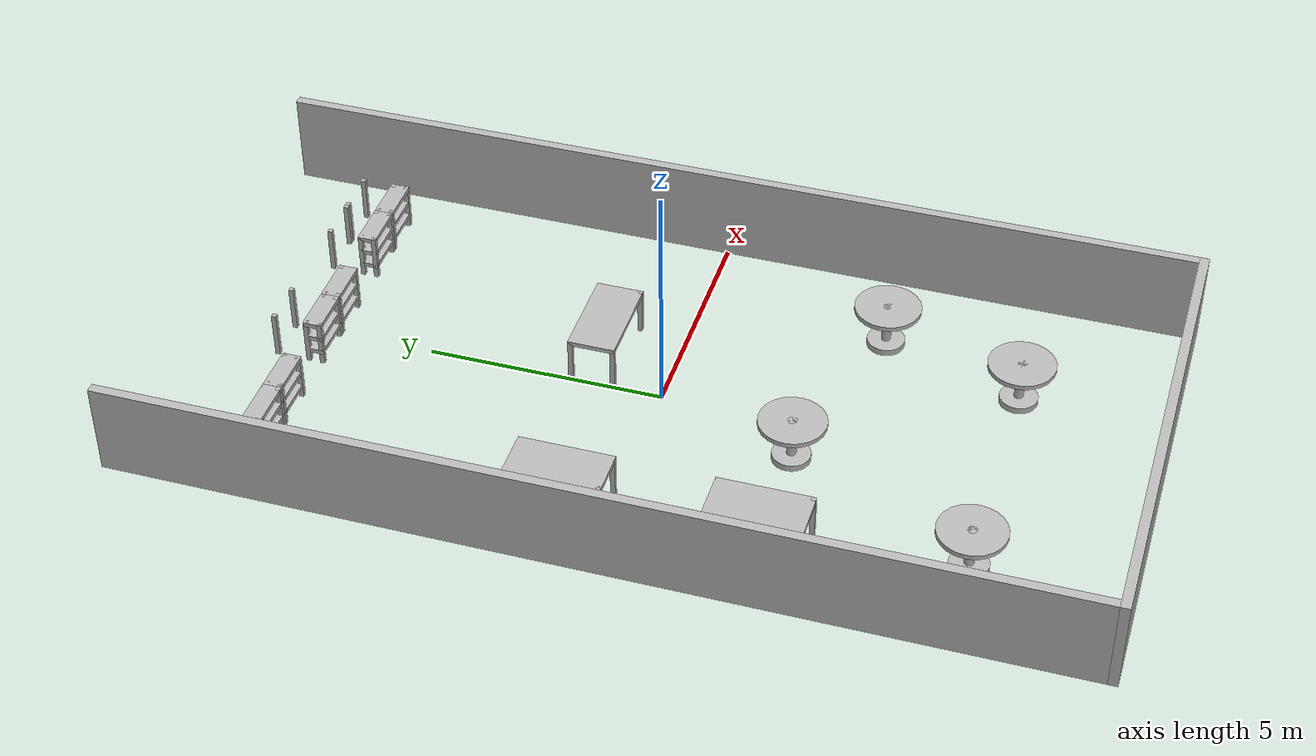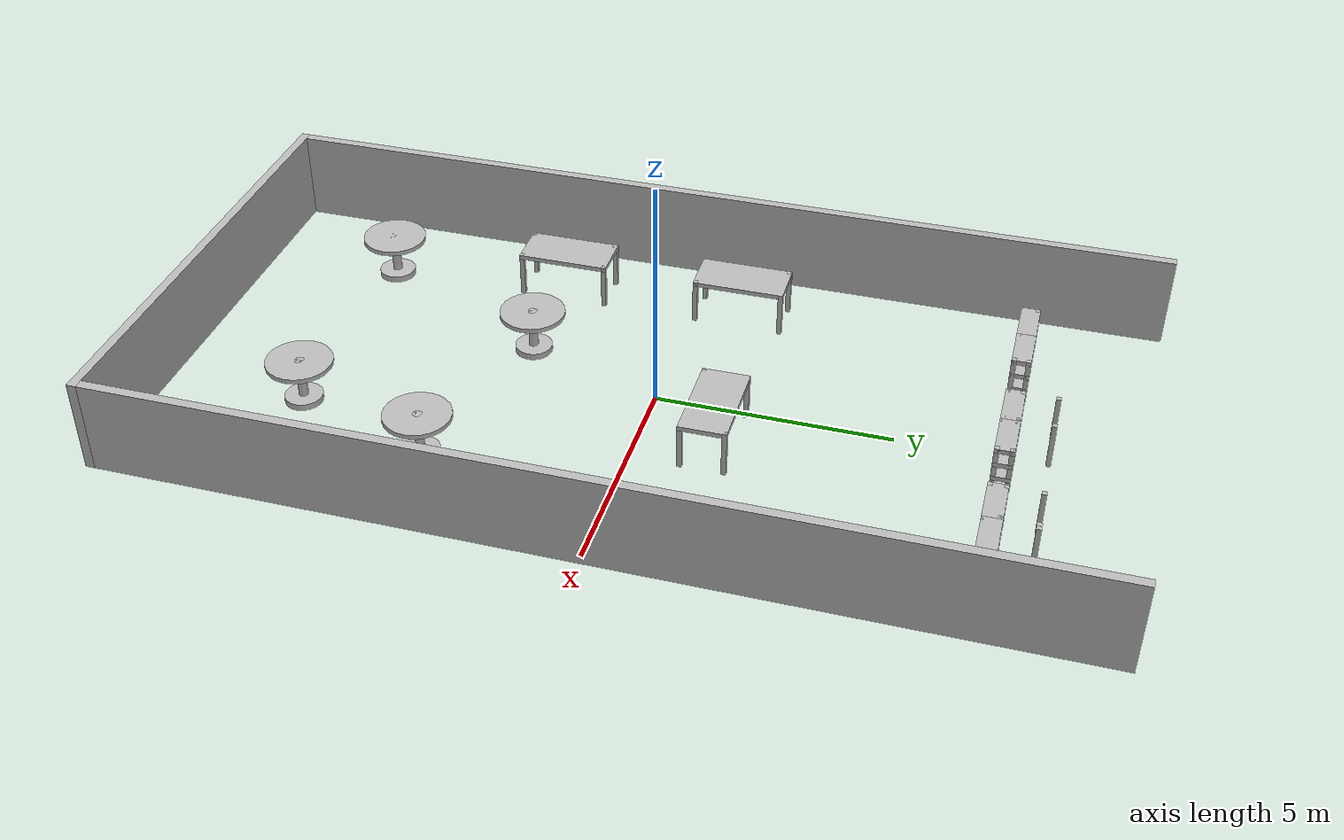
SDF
<sdf version="1.11">
 <model name="store-model">
  <static>true</static>
  <link name="store-shelf-l1-support0">
   <pose>2.05 8.05 0.5 0 0 0</pose>
   <visual name="store-shelf-v1-support0">
    <geometry><box><size>0.1 0.1 1</size></box></geometry>
    <material>
     <diffuse>0.726 0.726 0.726 1</diffuse>
     <ambient>0.726 0.726 0.726 1</ambient>
     <specular>0.726 0.726 0.726 1</specular>
    </material>
   </visual>
   <collision name="store-shelf-c1-support0"><geometry><box><size>0.1 0.1 1</size></box></geometry></collision>
  </link>
  <link name="store-shelf-l1-support1">
   <pose>2.95 8.05 0.5 0 0 0</pose>
   <visual name="store-shelf-v1-support1">
    <geometry><box><size>0.1 0.1 1</size></box></geometry>
    <material>
     <diffuse>0.726 0.726 0.726 1</diffuse>
     <ambient>0.726 0.726 0.726 1</ambient>
     <specular>0.726 0.726 0.726 1</specular>
    </material>
   </visual>
   <collision name="store-shelf-c1-support1"><geometry><box><size>0.1 0.1 1</size></box></geometry></collision>
  </link>
  <link name="store-shelf-l2-shelf0">
   <pose>2.5 7.2 0.95 0 0 0</pose>
   <visual name="store-shelf-v2-shelf0">
    <geometry><box><size>1 0.4 0.1</size></box></geometry>
    <material>
     <diffuse>0.726 0.726 0.726 1</diffuse>
     <ambient>0.726 0.726 0.726 1</ambient>
     <specular>0.726 0.726 0.726 1</specular>
    </material>
   </visual>
   <collision name="store-shelf-c2-shelf0"><geometry><box><size>1 0.4 0.1</size></box></geometry></collision>
  </link>
  <link name="store-shelf-l2-shelf1">
   <pose>2.5 7.2 0.6166666666666666 0 0 0</pose>
   <visual name="store-shelf-v2-shelf1">
    <geometry><box><size>1 0.4 0.1</size></box></geometry>
    <material>
     <diffuse>0.726 0.726 0.726 1</diffuse>
     <ambient>0.726 0.726 0.726 1</ambient>
     <specular>0.726 0.726 0.726 1</specular>
    </material>
   </visual>
   <collision name="store-shelf-c2-shelf1"><geometry><box><size>1 0.4 0.1</size></box></geometry></collision>
  </link>
  <link name="store-shelf-l2-shelf2">
   <pose>2.5 7.2 0.2833333333333333 0 0 0</pose>
   <visual name="store-shelf-v2-shelf2">
    <geometry><box><size>1 0.4 0.1</size></box></geometry>
    <material>
     <diffuse>0.726 0.726 0.726 1</diffuse>
     <ambient>0.726 0.726 0.726 1</ambient>
     <specular>0.726 0.726 0.726 1</specular>
    </material>
   </visual>
   <collision name="store-shelf-c2-shelf2"><geometry><box><size>1 0.4 0.1</size></box></geometry></collision>
  </link>
  <link name="store-shelf-l2-support0">
   <pose>2.05 7.05 0.5 0 0 0</pose>
   <visual name="store-shelf-v2-support0">
    <geometry><box><size>0.1 0.1 1</size></box></geometry>
    <material>
     <diffuse>0.726 0.726 0.726 1</diffuse>
     <ambient>0.726 0.726 0.726 1</ambient>
     <specular>0.726 0.726 0.726 1</specular>
    </material>
   </visual>
   <collision name="store-shelf-c2-support0"><geometry><box><size>0.1 0.1 1</size></box></geometry></collision>
  </link>
  <link name="store-shelf-l2-support1">
   <pose>2.95 7.05 0.5 0 0 0</pose>
   <visual name="store-shelf-v2-support1">
    <geometry><box><size>0.1 0.1 1</size></box></geometry>
    <material>
     <diffuse>0.726 0.726 0.726 1</diffuse>
     <ambient>0.726 0.726 0.726 1</ambient>
     <specular>0.726 0.726 0.726 1</specular>
    </material>
   </visual>
   <collision name="store-shelf-c2-support1"><geometry><box><size>0.1 0.1 1</size></box></geometry></collision>
  </link>
  <link name="store-shelf-l2-support2">
   <pose>2.05 7.3500000000000005 0.5 0 0 0</pose>
   <visual name="store-shelf-v2-support2">
    <geometry><box><size>0.1 0.1 1</size></box></geometry>
    <material>
     <diffuse>0.726 0.726 0.726 1</diffuse>
     <ambient>0.726 0.726 0.726 1</ambient>
     <specular>0.726 0.726 0.726 1</specular>
    </material>
   </visual>
   <collision name="store-shelf-c2-support2"><geometry><box><size>0.1 0.1 1</size></box></geometry></collision>
  </link>
  <link name="store-shelf-l2-support3">
   <pose>2.95 7.3500000000000005 0.5 0 0 0</pose>
   <visual name="store-shelf-v2-support3">
    <geometry><box><size>0.1 0.1 1</size></box></geometry>
    <material>
     <diffuse>0.726 0.726 0.726 1</diffuse>
     <ambient>0.726 0.726 0.726 1</ambient>
     <specular>0.726 0.726 0.726 1</specular>
    </material>
   </visual>
   <collision name="store-shelf-c2-support3"><geometry><box><size>0.1 0.1 1</size></box></geometry></collision>
  </link>
  <link name="store-shelf-l3-shelf0">
   <pose>3.5 7.2 0.95 0 0 0</pose>
   <visual name="store-shelf-v3-shelf0">
    <geometry><box><size>1 0.4 0.1</size></box></geometry>
    <material>
     <diffuse>0.726 0.726 0.726 1</diffuse>
     <ambient>0.726 0.726 0.726 1</ambient>
     <specular>0.726 0.726 0.726 1</specular>
    </material>
   </visual>
   <collision name="store-shelf-c3-shelf0"><geometry><box><size>1 0.4 0.1</size></box></geometry></collision>
  </link>
  <link name="store-shelf-l3-shelf1">
   <pose>3.5 7.2 0.6166666666666666 0 0 0</pose>
   <visual name="store-shelf-v3-shelf1">
    <geometry><box><size>1 0.4 0.1</size></box></geometry>
    <material>
     <diffuse>0.726 0.726 0.726 1</diffuse>
     <ambient>0.726 0.726 0.726 1</ambient>
     <specular>0.726 0.726 0.726 1</specular>
    </material>
   </visual>
   <collision name="store-shelf-c3-shelf1"><geometry><box><size>1 0.4 0.1</size></box></geometry></collision>
  </link>
  <link name="store-shelf-l3-shelf2">
   <pose>3.5 7.2 0.2833333333333333 0 0 0</pose>
   <visual name="store-shelf-v3-shelf2">
    <geometry><box><size>1 0.4 0.1</size></box></geometry>
    <material>
     <diffuse>0.726 0.726 0.726 1</diffuse>
     <ambient>0.726 0.726 0.726 1</ambient>
     <specular>0.726 0.726 0.726 1</specular>
    </material>
   </visual>
   <collision name="store-shelf-c3-shelf2"><geometry><box><size>1 0.4 0.1</size></box></geometry></collision>
  </link>
  <link name="store-shelf-l3-support0">
   <pose>3.05 7.05 0.5 0 0 0</pose>
   <visual name="store-shelf-v3-support0">
    <geometry><box><size>0.1 0.1 1</size></box></geometry>
    <material>
     <diffuse>0.726 0.726 0.726 1</diffuse>
     <ambient>0.726 0.726 0.726 1</ambient>
     <specular>0.726 0.726 0.726 1</specular>
    </material>
   </visual>
   <collision name="store-shelf-c3-support0"><geometry><box><size>0.1 0.1 1</size></box></geometry></collision>
  </link>
  <link name="store-shelf-l3-support1">
   <pose>3.95 7.05 0.5 0 0 0</pose>
   <visual name="store-shelf-v3-support1">
    <geometry><box><size>0.1 0.1 1</size></box></geometry>
    <material>
     <diffuse>0.726 0.726 0.726 1</diffuse>
     <ambient>0.726 0.726 0.726 1</ambient>
     <specular>0.726 0.726 0.726 1</specular>
    </material>
   </visual>
   <collision name="store-shelf-c3-support1"><geometry><box><size>0.1 0.1 1</size></box></geometry></collision>
  </link>
  <link name="store-shelf-l3-support2">
   <pose>3.05 7.3500000000000005 0.5 0 0 0</pose>
   <visual name="store-shelf-v3-support2">
    <geometry><box><size>0.1 0.1 1</size></box></geometry>
    <material>
     <diffuse>0.726 0.726 0.726 1</diffuse>
     <ambient>0.726 0.726 0.726 1</ambient>
     <specular>0.726 0.726 0.726 1</specular>
    </material>
   </visual>
   <collision name="store-shelf-c3-support2"><geometry><box><size>0.1 0.1 1</size></box></geometry></collision>
  </link>
  <link name="store-shelf-l3-support3">
   <pose>3.95 7.3500000000000005 0.5 0 0 0</pose>
   <visual name="store-shelf-v3-support3">
    <geometry><box><size>0.1 0.1 1</size></box></geometry>
    <material>
     <diffuse>0.726 0.726 0.726 1</diffuse>
     <ambient>0.726 0.726 0.726 1</ambient>
     <specular>0.726 0.726 0.726 1</specular>
    </material>
   </visual>
   <collision name="store-shelf-c3-support3"><geometry><box><size>0.1 0.1 1</size></box></geometry></collision>
  </link>
  <link name="store-shelf-l4-support0">
   <pose>3.05 8.05 0.5 0 0 0</pose>
   <visual name="store-shelf-v4-support0">
    <geometry><box><size>0.1 0.1 1</size></box></geometry>
    <material>
     <diffuse>0.726 0.726 0.726 1</diffuse>
     <ambient>0.726 0.726 0.726 1</ambient>
     <specular>0.726 0.726 0.726 1</specular>
    </material>
   </visual>
   <collision name="store-shelf-c4-support0"><geometry><box><size>0.1 0.1 1</size></box></geometry></collision>
  </link>
  <link name="store-shelf-l4-support1">
   <pose>3.95 8.05 0.5 0 0 0</pose>
   <visual name="store-shelf-v4-support1">
    <geometry><box><size>0.1 0.1 1</size></box></geometry>
    <material>
     <diffuse>0.726 0.726 0.726 1</diffuse>
     <ambient>0.726 0.726 0.726 1</ambient>
     <specular>0.726 0.726 0.726 1</specular>
    </material>
   </visual>
   <collision name="store-shelf-c4-support1"><geometry><box><size>0.1 0.1 1</size></box></geometry></collision>
  </link>
  <link name="store-shelf-l6-shelf0">
   <pose>-0.5 7.2 0.95 0 0 0</pose>
   <visual name="store-shelf-v6-shelf0">
    <geometry><box><size>1 0.4 0.1</size></box></geometry>
    <material>
     <diffuse>0.726 0.726 0.726 1</diffuse>
     <ambient>0.726 0.726 0.726 1</ambient>
     <specular>0.726 0.726 0.726 1</specular>
    </material>
   </visual>
   <collision name="store-shelf-c6-shelf0"><geometry><box><size>1 0.4 0.1</size></box></geometry></collision>
  </link>
  <link name="store-shelf-l6-shelf1">
   <pose>-0.5 7.2 0.6166666666666666 0 0 0</pose>
   <visual name="store-shelf-v6-shelf1">
    <geometry><box><size>1 0.4 0.1</size></box></geometry>
    <material>
     <diffuse>0.726 0.726 0.726 1</diffuse>
     <ambient>0.726 0.726 0.726 1</ambient>
     <specular>0.726 0.726 0.726 1</specular>
    </material>
   </visual>
   <collision name="store-shelf-c6-shelf1"><geometry><box><size>1 0.4 0.1</size></box></geometry></collision>
  </link>
  <link name="store-shelf-l6-shelf2">
   <pose>-0.5 7.2 0.2833333333333333 0 0 0</pose>
   <visual name="store-shelf-v6-shelf2">
    <geometry><box><size>1 0.4 0.1</size></box></geometry>
    <material>
     <diffuse>0.726 0.726 0.726 1</diffuse>
     <ambient>0.726 0.726 0.726 1</ambient>
     <specular>0.726 0.726 0.726 1</specular>
    </material>
   </visual>
   <collision name="store-shelf-c6-shelf2"><geometry><box><size>1 0.4 0.1</size></box></geometry></collision>
  </link>
  <link name="store-shelf-l6-support0">
   <pose>-0.95 7.05 0.5 0 0 0</pose>
   <visual name="store-shelf-v6-support0">
    <geometry><box><size>0.1 0.1 1</size></box></geometry>
    <material>
     <diffuse>0.726 0.726 0.726 1</diffuse>
     <ambient>0.726 0.726 0.726 1</ambient>
     <specular>0.726 0.726 0.726 1</specular>
    </material>
   </visual>
   <collision name="store-shelf-c6-support0"><geometry><box><size>0.1 0.1 1</size></box></geometry></collision>
  </link>
  <link name="store-shelf-l6-support1">
   <pose>-0.05 7.05 0.5 0 0 0</pose>
   <visual name="store-shelf-v6-support1">
    <geometry><box><size>0.1 0.1 1</size></box></geometry>
    <material>
     <diffuse>0.726 0.726 0.726 1</diffuse>
     <ambient>0.726 0.726 0.726 1</ambient>
     <specular>0.726 0.726 0.726 1</specular>
    </material>
   </visual>
   <collision name="store-shelf-c6-support1"><geometry><box><size>0.1 0.1 1</size></box></geometry></collision>
  </link>
  <link name="store-shelf-l6-support2">
   <pose>-0.95 7.3500000000000005 0.5 0 0 0</pose>
   <visual name="store-shelf-v6-support2">
    <geometry><box><size>0.1 0.1 1</size></box></geometry>
    <material>
     <diffuse>0.726 0.726 0.726 1</diffuse>
     <ambient>0.726 0.726 0.726 1</ambient>
     <specular>0.726 0.726 0.726 1</specular>
    </material>
   </visual>
   <collision name="store-shelf-c6-support2"><geometry><box><size>0.1 0.1 1</size></box></geometry></collision>
  </link>
  <link name="store-shelf-l6-support3">
   <pose>-0.05 7.3500000000000005 0.5 0 0 0</pose>
   <visual name="store-shelf-v6-support3">
    <geometry><box><size>0.1 0.1 1</size></box></geometry>
    <material>
     <diffuse>0.726 0.726 0.726 1</diffuse>
     <ambient>0.726 0.726 0.726 1</ambient>
     <specular>0.726 0.726 0.726 1</specular>
    </material>
   </visual>
   <collision name="store-shelf-c6-support3"><geometry><box><size>0.1 0.1 1</size></box></geometry></collision>
  </link>
  <link name="store-shelf-l7-support0">
   <pose>-0.95 8.05 0.5 0 0 0</pose>
   <visual name="store-shelf-v7-support0">
    <geometry><box><size>0.1 0.1 1</size></box></geometry>
    <material>
     <diffuse>0.726 0.726 0.726 1</diffuse>
     <ambient>0.726 0.726 0.726 1</ambient>
     <specular>0.726 0.726 0.726 1</specular>
    </material>
   </visual>
   <collision name="store-shelf-c7-support0"><geometry><box><size>0.1 0.1 1</size></box></geometry></collision>
  </link>
  <link name="store-shelf-l7-support1">
   <pose>-0.05 8.05 0.5 0 0 0</pose>
   <visual name="store-shelf-v7-support1">
    <geometry><box><size>0.1 0.1 1</size></box></geometry>
    <material>
     <diffuse>0.726 0.726 0.726 1</diffuse>
     <ambient>0.726 0.726 0.726 1</ambient>
     <specular>0.726 0.726 0.726 1</specular>
    </material>
   </visual>
   <collision name="store-shelf-c7-support1"><geometry><box><size>0.1 0.1 1</size></box></geometry></collision>
  </link>
  <link name="store-shelf-l9-shelf0">
   <pose>0.5 7.2 0.95 0 0 0</pose>
   <visual name="store-shelf-v9-shelf0">
    <geometry><box><size>1 0.4 0.1</size></box></geometry>
    <material>
     <diffuse>0.726 0.726 0.726 1</diffuse>
     <ambient>0.726 0.726 0.726 1</ambient>
     <specular>0.726 0.726 0.726 1</specular>
    </material>
   </visual>
   <collision name="store-shelf-c9-shelf0"><geometry><box><size>1 0.4 0.1</size></box></geometry></collision>
  </link>
  <link name="store-shelf-l9-shelf1">
   <pose>0.5 7.2 0.6166666666666666 0 0 0</pose>
   <visual name="store-shelf-v9-shelf1">
    <geometry><box><size>1 0.4 0.1</size></box></geometry>
    <material>
     <diffuse>0.726 0.726 0.726 1</diffuse>
     <ambient>0.726 0.726 0.726 1</ambient>
     <specular>0.726 0.726 0.726 1</specular>
    </material>
   </visual>
   <collision name="store-shelf-c9-shelf1"><geometry><box><size>1 0.4 0.1</size></box></geometry></collision>
  </link>
  <link name="store-shelf-l9-shelf2">
   <pose>0.5 7.2 0.2833333333333333 0 0 0</pose>
   <visual name="store-shelf-v9-shelf2">
    <geometry><box><size>1 0.4 0.1</size></box></geometry>
    <material>
     <diffuse>0.726 0.726 0.726 1</diffuse>
     <ambient>0.726 0.726 0.726 1</ambient>
     <specular>0.726 0.726 0.726 1</specular>
    </material>
   </visual>
   <collision name="store-shelf-c9-shelf2"><geometry><box><size>1 0.4 0.1</size></box></geometry></collision>
  </link>
  <link name="store-shelf-l9-support0">
   <pose>0.05 7.05 0.5 0 0 0</pose>
   <visual name="store-shelf-v9-support0">
    <geometry><box><size>0.1 0.1 1</size></box></geometry>
    <material>
     <diffuse>0.726 0.726 0.726 1</diffuse>
     <ambient>0.726 0.726 0.726 1</ambient>
     <specular>0.726 0.726 0.726 1</specular>
    </material>
   </visual>
   <collision name="store-shelf-c9-support0"><geometry><box><size>0.1 0.1 1</size></box></geometry></collision>
  </link>
  <link name="store-shelf-l9-support1">
   <pose>0.95 7.05 0.5 0 0 0</pose>
   <visual name="store-shelf-v9-support1">
    <geometry><box><size>0.1 0.1 1</size></box></geometry>
    <material>
     <diffuse>0.726 0.726 0.726 1</diffuse>
     <ambient>0.726 0.726 0.726 1</ambient>
     <specular>0.726 0.726 0.726 1</specular>
    </material>
   </visual>
   <collision name="store-shelf-c9-support1"><geometry><box><size>0.1 0.1 1</size></box></geometry></collision>
  </link>
  <link name="store-shelf-l9-support2">
   <pose>0.05 7.3500000000000005 0.5 0 0 0</pose>
   <visual name="store-shelf-v9-support2">
    <geometry><box><size>0.1 0.1 1</size></box></geometry>
    <material>
     <diffuse>0.726 0.726 0.726 1</diffuse>
     <ambient>0.726 0.726 0.726 1</ambient>
     <specular>0.726 0.726 0.726 1</specular>
    </material>
   </visual>
   <collision name="store-shelf-c9-support2"><geometry><box><size>0.1 0.1 1</size></box></geometry></collision>
  </link>
  <link name="store-shelf-l9-support3">
   <pose>0.95 7.3500000000000005 0.5 0 0 0</pose>
   <visual name="store-shelf-v9-support3">
    <geometry><box><size>0.1 0.1 1</size></box></geometry>
    <material>
     <diffuse>0.726 0.726 0.726 1</diffuse>
     <ambient>0.726 0.726 0.726 1</ambient>
     <specular>0.726 0.726 0.726 1</specular>
    </material>
   </visual>
   <collision name="store-shelf-c9-support3"><geometry><box><size>0.1 0.1 1</size></box></geometry></collision>
  </link>
  <link name="store-shelf-l12-shelf0">
   <pose>-3.5 7.2 0.95 0 0 0</pose>
   <visual name="store-shelf-v12-shelf0">
    <geometry><box><size>1 0.4 0.1</size></box></geometry>
    <material>
     <diffuse>0.726 0.726 0.726 1</diffuse>
     <ambient>0.726 0.726 0.726 1</ambient>
     <specular>0.726 0.726 0.726 1</specular>
    </material>
   </visual>
   <collision name="store-shelf-c12-shelf0"><geometry><box><size>1 0.4 0.1</size></box></geometry></collision>
  </link>
  <link name="store-shelf-l12-shelf1">
   <pose>-3.5 7.2 0.6166666666666666 0 0 0</pose>
   <visual name="store-shelf-v12-shelf1">
    <geometry><box><size>1 0.4 0.1</size></box></geometry>
    <material>
     <diffuse>0.726 0.726 0.726 1</diffuse>
     <ambient>0.726 0.726 0.726 1</ambient>
     <specular>0.726 0.726 0.726 1</specular>
    </material>
   </visual>
   <collision name="store-shelf-c12-shelf1"><geometry><box><size>1 0.4 0.1</size></box></geometry></collision>
  </link>
  <link name="store-shelf-l12-shelf2">
   <pose>-3.5 7.2 0.2833333333333333 0 0 0</pose>
   <visual name="store-shelf-v12-shelf2">
    <geometry><box><size>1 0.4 0.1</size></box></geometry>
    <material>
     <diffuse>0.726 0.726 0.726 1</diffuse>
     <ambient>0.726 0.726 0.726 1</ambient>
     <specular>0.726 0.726 0.726 1</specular>
    </material>
   </visual>
   <collision name="store-shelf-c12-shelf2"><geometry><box><size>1 0.4 0.1</size></box></geometry></collision>
  </link>
  <link name="store-shelf-l12-support0">
   <pose>-3.95 7.05 0.5 0 0 0</pose>
   <visual name="store-shelf-v12-support0">
    <geometry><box><size>0.1 0.1 1</size></box></geometry>
    <material>
     <diffuse>0.726 0.726 0.726 1</diffuse>
     <ambient>0.726 0.726 0.726 1</ambient>
     <specular>0.726 0.726 0.726 1</specular>
    </material>
   </visual>
   <collision name="store-shelf-c12-support0"><geometry><box><size>0.1 0.1 1</size></box></geometry></collision>
  </link>
  <link name="store-shelf-l12-support1">
   <pose>-3.05 7.05 0.5 0 0 0</pose>
   <visual name="store-shelf-v12-support1">
    <geometry><box><size>0.1 0.1 1</size></box></geometry>
    <material>
     <diffuse>0.726 0.726 0.726 1</diffuse>
     <ambient>0.726 0.726 0.726 1</ambient>
     <specular>0.726 0.726 0.726 1</specular>
    </material>
   </visual>
   <collision name="store-shelf-c12-support1"><geometry><box><size>0.1 0.1 1</size></box></geometry></collision>
  </link>
  <link name="store-shelf-l12-support2">
   <pose>-3.95 7.3500000000000005 0.5 0 0 0</pose>
   <visual name="store-shelf-v12-support2">
    <geometry><box><size>0.1 0.1 1</size></box></geometry>
    <material>
     <diffuse>0.726 0.726 0.726 1</diffuse>
     <ambient>0.726 0.726 0.726 1</ambient>
     <specular>0.726 0.726 0.726 1</specular>
    </material>
   </visual>
   <collision name="store-shelf-c12-support2"><geometry><box><size>0.1 0.1 1</size></box></geometry></collision>
  </link>
  <link name="store-shelf-l12-support3">
   <pose>-3.05 7.3500000000000005 0.5 0 0 0</pose>
   <visual name="store-shelf-v12-support3">
    <geometry><box><size>0.1 0.1 1</size></box></geometry>
    <material>
     <diffuse>0.726 0.726 0.726 1</diffuse>
     <ambient>0.726 0.726 0.726 1</ambient>
     <specular>0.726 0.726 0.726 1</specular>
    </material>
   </visual>
   <collision name="store-shelf-c12-support3"><geometry><box><size>0.1 0.1 1</size></box></geometry></collision>
  </link>
  <link name="store-shelf-l15-shelf0">
   <pose>-2.5 7.2 0.95 0 0 0</pose>
   <visual name="store-shelf-v15-shelf0">
    <geometry><box><size>1 0.4 0.1</size></box></geometry>
    <material>
     <diffuse>0.726 0.726 0.726 1</diffuse>
     <ambient>0.726 0.726 0.726 1</ambient>
     <specular>0.726 0.726 0.726 1</specular>
    </material>
   </visual>
   <collision name="store-shelf-c15-shelf0"><geometry><box><size>1 0.4 0.1</size></box></geometry></collision>
  </link>
  <link name="store-shelf-l15-shelf1">
   <pose>-2.5 7.2 0.6166666666666666 0 0 0</pose>
   <visual name="store-shelf-v15-shelf1">
    <geometry><box><size>1 0.4 0.1</size></box></geometry>
    <material>
     <diffuse>0.726 0.726 0.726 1</diffuse>
     <ambient>0.726 0.726 0.726 1</ambient>
     <specular>0.726 0.726 0.726 1</specular>
    </material>
   </visual>
   <collision name="store-shelf-c15-shelf1"><geometry><box><size>1 0.4 0.1</size></box></geometry></collision>
  </link>
  <link name="store-shelf-l15-shelf2">
   <pose>-2.5 7.2 0.2833333333333333 0 0 0</pose>
   <visual name="store-shelf-v15-shelf2">
    <geometry><box><size>1 0.4 0.1</size></box></geometry>
    <material>
     <diffuse>0.726 0.726 0.726 1</diffuse>
     <ambient>0.726 0.726 0.726 1</ambient>
     <specular>0.726 0.726 0.726 1</specular>
    </material>
   </visual>
   <collision name="store-shelf-c15-shelf2"><geometry><box><size>1 0.4 0.1</size></box></geometry></collision>
  </link>
  <link name="store-shelf-l15-support0">
   <pose>-2.95 7.05 0.5 0 0 0</pose>
   <visual name="store-shelf-v15-support0">
    <geometry><box><size>0.1 0.1 1</size></box></geometry>
    <material>
     <diffuse>0.726 0.726 0.726 1</diffuse>
     <ambient>0.726 0.726 0.726 1</ambient>
     <specular>0.726 0.726 0.726 1</specular>
    </material>
   </visual>
   <collision name="store-shelf-c15-support0"><geometry><box><size>0.1 0.1 1</size></box></geometry></collision>
  </link>
  <link name="store-shelf-l15-support1">
   <pose>-2.05 7.05 0.5 0 0 0</pose>
   <visual name="store-shelf-v15-support1">
    <geometry><box><size>0.1 0.1 1</size></box></geometry>
    <material>
     <diffuse>0.726 0.726 0.726 1</diffuse>
     <ambient>0.726 0.726 0.726 1</ambient>
     <specular>0.726 0.726 0.726 1</specular>
    </material>
   </visual>
   <collision name="store-shelf-c15-support1"><geometry><box><size>0.1 0.1 1</size></box></geometry></collision>
  </link>
  <link name="store-shelf-l15-support2">
   <pose>-2.95 7.3500000000000005 0.5 0 0 0</pose>
   <visual name="store-shelf-v15-support2">
    <geometry><box><size>0.1 0.1 1</size></box></geometry>
    <material>
     <diffuse>0.726 0.726 0.726 1</diffuse>
     <ambient>0.726 0.726 0.726 1</ambient>
     <specular>0.726 0.726 0.726 1</specular>
    </material>
   </visual>
   <collision name="store-shelf-c15-support2"><geometry><box><size>0.1 0.1 1</size></box></geometry></collision>
  </link>
  <link name="store-shelf-l15-support3">
   <pose>-2.05 7.3500000000000005 0.5 0 0 0</pose>
   <visual name="store-shelf-v15-support3">
    <geometry><box><size>0.1 0.1 1</size></box></geometry>
    <material>
     <diffuse>0.726 0.726 0.726 1</diffuse>
     <ambient>0.726 0.726 0.726 1</ambient>
     <specular>0.726 0.726 0.726 1</specular>
    </material>
   </visual>
   <collision name="store-shelf-c15-support3"><geometry><box><size>0.1 0.1 1</size></box></geometry></collision>
  </link>
  <link name="store-shelf-l18-shelf0">
   <pose>-3.5 1.0 0.95 0 0 0</pose>
   <visual name="store-shelf-v18-shelf0">
    <geometry><box><size>1 2 0.1</size></box></geometry>
    <material>
     <diffuse>0.726 0.726 0.726 1</diffuse>
     <ambient>0.726 0.726 0.726 1</ambient>
     <specular>0.726 0.726 0.726 1</specular>
    </material>
   </visual>
   <collision name="store-shelf-c18-shelf0"><geometry><box><size>1 2 0.1</size></box></geometry></collision>
  </link>
  <link name="store-shelf-l18-support0">
   <pose>-3.95 0.05 0.5 0 0 0</pose>
   <visual name="store-shelf-v18-support0">
    <geometry><box><size>0.1 0.1 1</size></box></geometry>
    <material>
     <diffuse>0.726 0.726 0.726 1</diffuse>
     <ambient>0.726 0.726 0.726 1</ambient>
     <specular>0.726 0.726 0.726 1</specular>
    </material>
   </visual>
   <collision name="store-shelf-c18-support0"><geometry><box><size>0.1 0.1 1</size></box></geometry></collision>
  </link>
  <link name="store-shelf-l18-support1">
   <pose>-3.05 0.05 0.5 0 0 0</pose>
   <visual name="store-shelf-v18-support1">
    <geometry><box><size>0.1 0.1 1</size></box></geometry>
    <material>
     <diffuse>0.726 0.726 0.726 1</diffuse>
     <ambient>0.726 0.726 0.726 1</ambient>
     <specular>0.726 0.726 0.726 1</specular>
    </material>
   </visual>
   <collision name="store-shelf-c18-support1"><geometry><box><size>0.1 0.1 1</size></box></geometry></collision>
  </link>
  <link name="store-shelf-l18-support2">
   <pose>-3.95 1.95 0.5 0 0 0</pose>
   <visual name="store-shelf-v18-support2">
    <geometry><box><size>0.1 0.1 1</size></box></geometry>
    <material>
     <diffuse>0.726 0.726 0.726 1</diffuse>
     <ambient>0.726 0.726 0.726 1</ambient>
     <specular>0.726 0.726 0.726 1</specular>
    </material>
   </visual>
   <collision name="store-shelf-c18-support2"><geometry><box><size>0.1 0.1 1</size></box></geometry></collision>
  </link>
  <link name="store-shelf-l18-support3">
   <pose>-3.05 1.95 0.5 0 0 0</pose>
   <visual name="store-shelf-v18-support3">
    <geometry><box><size>0.1 0.1 1</size></box></geometry>
    <material>
     <diffuse>0.726 0.726 0.726 1</diffuse>
     <ambient>0.726 0.726 0.726 1</ambient>
     <specular>0.726 0.726 0.726 1</specular>
    </material>
   </visual>
   <collision name="store-shelf-c18-support3"><geometry><box><size>0.1 0.1 1</size></box></geometry></collision>
  </link>
  <link name="store-shelf-l19-shelf0">
   <pose>-3.5 -3.0 0.95 0 0 0</pose>
   <visual name="store-shelf-v19-shelf0">
    <geometry><box><size>1 2 0.1</size></box></geometry>
    <material>
     <diffuse>0.726 0.726 0.726 1</diffuse>
     <ambient>0.726 0.726 0.726 1</ambient>
     <specular>0.726 0.726 0.726 1</specular>
    </material>
   </visual>
   <collision name="store-shelf-c19-shelf0"><geometry><box><size>1 2 0.1</size></box></geometry></collision>
  </link>
  <link name="store-shelf-l19-support0">
   <pose>-3.95 -3.95 0.5 0 0 0</pose>
   <visual name="store-shelf-v19-support0">
    <geometry><box><size>0.1 0.1 1</size></box></geometry>
    <material>
     <diffuse>0.726 0.726 0.726 1</diffuse>
     <ambient>0.726 0.726 0.726 1</ambient>
     <specular>0.726 0.726 0.726 1</specular>
    </material>
   </visual>
   <collision name="store-shelf-c19-support0"><geometry><box><size>0.1 0.1 1</size></box></geometry></collision>
  </link>
  <link name="store-shelf-l19-support1">
   <pose>-3.05 -3.95 0.5 0 0 0</pose>
   <visual name="store-shelf-v19-support1">
    <geometry><box><size>0.1 0.1 1</size></box></geometry>
    <material>
     <diffuse>0.726 0.726 0.726 1</diffuse>
     <ambient>0.726 0.726 0.726 1</ambient>
     <specular>0.726 0.726 0.726 1</specular>
    </material>
   </visual>
   <collision name="store-shelf-c19-support1"><geometry><box><size>0.1 0.1 1</size></box></geometry></collision>
  </link>
  <link name="store-shelf-l19-support2">
   <pose>-3.95 -2.05 0.5 0 0 0</pose>
   <visual name="store-shelf-v19-support2">
    <geometry><box><size>0.1 0.1 1</size></box></geometry>
    <material>
     <diffuse>0.726 0.726 0.726 1</diffuse>
     <ambient>0.726 0.726 0.726 1</ambient>
     <specular>0.726 0.726 0.726 1</specular>
    </material>
   </visual>
   <collision name="store-shelf-c19-support2"><geometry><box><size>0.1 0.1 1</size></box></geometry></collision>
  </link>
  <link name="store-shelf-l19-support3">
   <pose>-3.05 -2.05 0.5 0 0 0</pose>
   <visual name="store-shelf-v19-support3">
    <geometry><box><size>0.1 0.1 1</size></box></geometry>
    <material>
     <diffuse>0.726 0.726 0.726 1</diffuse>
     <ambient>0.726 0.726 0.726 1</ambient>
     <specular>0.726 0.726 0.726 1</specular>
    </material>
   </visual>
   <collision name="store-shelf-c19-support3"><geometry><box><size>0.1 0.1 1</size></box></geometry></collision>
  </link>
  <link name="store-shelf-l20-shelf0">
   <pose>1.0 1.5 0.95 0 0 0</pose>
   <visual name="store-shelf-v20-shelf0">
    <geometry><box><size>2 1 0.1</size></box></geometry>
    <material>
     <diffuse>0.726 0.726 0.726 1</diffuse>
     <ambient>0.726 0.726 0.726 1</ambient>
     <specular>0.726 0.726 0.726 1</specular>
    </material>
   </visual>
   <collision name="store-shelf-c20-shelf0"><geometry><box><size>2 1 0.1</size></box></geometry></collision>
  </link>
  <link name="store-shelf-l20-support0">
   <pose>0.05 1.05 0.5 0 0 0</pose>
   <visual name="store-shelf-v20-support0">
    <geometry><box><size>0.1 0.1 1</size></box></geometry>
    <material>
     <diffuse>0.726 0.726 0.726 1</diffuse>
     <ambient>0.726 0.726 0.726 1</ambient>
     <specular>0.726 0.726 0.726 1</specular>
    </material>
   </visual>
   <collision name="store-shelf-c20-support0"><geometry><box><size>0.1 0.1 1</size></box></geometry></collision>
  </link>
  <link name="store-shelf-l20-support1">
   <pose>1.95 1.05 0.5 0 0 0</pose>
   <visual name="store-shelf-v20-support1">
    <geometry><box><size>0.1 0.1 1</size></box></geometry>
    <material>
     <diffuse>0.726 0.726 0.726 1</diffuse>
     <ambient>0.726 0.726 0.726 1</ambient>
     <specular>0.726 0.726 0.726 1</specular>
    </material>
   </visual>
   <collision name="store-shelf-c20-support1"><geometry><box><size>0.1 0.1 1</size></box></geometry></collision>
  </link>
  <link name="store-shelf-l20-support2">
   <pose>0.05 1.95 0.5 0 0 0</pose>
   <visual name="store-shelf-v20-support2">
    <geometry><box><size>0.1 0.1 1</size></box></geometry>
    <material>
     <diffuse>0.726 0.726 0.726 1</diffuse>
     <ambient>0.726 0.726 0.726 1</ambient>
     <specular>0.726 0.726 0.726 1</specular>
    </material>
   </visual>
   <collision name="store-shelf-c20-support2"><geometry><box><size>0.1 0.1 1</size></box></geometry></collision>
  </link>
  <link name="store-shelf-l20-support3">
   <pose>1.95 1.95 0.5 0 0 0</pose>
   <visual name="store-shelf-v20-support3">
    <geometry><box><size>0.1 0.1 1</size></box></geometry>
    <material>
     <diffuse>0.726 0.726 0.726 1</diffuse>
     <ambient>0.726 0.726 0.726 1</ambient>
     <specular>0.726 0.726 0.726 1</specular>
    </material>
   </visual>
   <collision name="store-shelf-c20-support3"><geometry><box><size>0.1 0.1 1</size></box></geometry></collision>
  </link>
  <link name="store-walls-link0">
   <pose>5.1 0.0 1.0 0 0 0</pose>
   <visual name="store-walls-v-wall0">
    <geometry><box><size>0.2 20 2</size></box></geometry>
    <material>
     <diffuse>0.726 0.726 0.726 1</diffuse>
     <ambient>0.726 0.726 0.726 1</ambient>
     <specular>0.726 0.726 0.726 1</specular>
    </material>
   </visual>
   <collision name="store-walls-c-wall0"><geometry><box><size>0.2 20 2</size></box></geometry></collision>
  </link>
  <link name="store-walls-link1">
   <pose>-5.1000000000000005 0.0 1.0 0 0 0</pose>
   <visual name="store-walls-v-wall1">
    <geometry><box><size>0.2 20 2</size></box></geometry>
    <material>
     <diffuse>0.726 0.726 0.726 1</diffuse>
     <ambient>0.726 0.726 0.726 1</ambient>
     <specular>0.726 0.726 0.726 1</specular>
    </material>
   </visual>
   <collision name="store-walls-c-wall1"><geometry><box><size>0.2 20 2</size></box></geometry></collision>
  </link>
  <link name="store-walls-link3">
   <pose>0.0 -10.1 1.0 0 0 0</pose>
   <visual name="store-walls-v-wall3">
    <geometry><box><size>10.4 0.2 2</size></box></geometry>
    <material>
     <diffuse>0.726 0.726 0.726 1</diffuse>
     <ambient>0.726 0.726 0.726 1</ambient>
     <specular>0.726 0.726 0.726 1</specular>
    </material>
   </visual>
   <collision name="store-walls-c-wall3"><geometry><box><size>10.4 0.2 2</size></box></geometry></collision>
  </link>
  <link name="store-rt-link0">
   <pose>3 -4 0.07 0 0 0</pose>
   <visual name="store-rt-v0">
    <geometry><cylinder><radius>0.4</radius><length>0.14</length></cylinder></geometry>
    <material>
     <diffuse>0.726 0.726 0.726 1</diffuse>
     <ambient>0.726 0.726 0.726 1</ambient>
     <specular>0.726 0.726 0.726 1</specular>
    </material>
   </visual>
   <collision name="store-rt-c0">
    <geometry><cylinder><radius>0.4</radius><length>0.14</length></cylinder></geometry>
   </collision>
  </link>
  <link name="store-rt-link1">
   <pose>3 -4 0.5 0 0 0</pose>
   <visual name="store-rt-v1">
    <geometry><cylinder><radius>0.1</radius><length>1</length></cylinder></geometry>
    <material>
     <diffuse>0.726 0.726 0.726 1</diffuse>
     <ambient>0.726 0.726 0.726 1</ambient>
     <specular>0.726 0.726 0.726 1</specular>
    </material>
   </visual>
   <collision name="store-rt-c1">
    <geometry><cylinder><radius>0.1</radius><length>1</length></cylinder></geometry>
   </collision>
  </link>
  <link name="store-rt-link2">
   <pose>3 -4 0.95 0 0 0</pose>
   <visual name="store-rt-v2">
    <geometry><cylinder><radius>0.7</radius><length>0.1</length></cylinder></geometry>
    <material>
     <diffuse>0.726 0.726 0.726 1</diffuse>
     <ambient>0.726 0.726 0.726 1</ambient>
     <specular>0.726 0.726 0.726 1</specular>
    </material>
   </visual>
   <collision name="store-rt-c2">
    <geometry><cylinder><radius>0.7</radius><length>0.1</length></cylinder></geometry>
   </collision>
  </link>
  <link name="store-rt-link3">
   <pose>2 -7 0.07 0 0 0</pose>
   <visual name="store-rt-v3">
    <geometry><cylinder><radius>0.4</radius><length>0.14</length></cylinder></geometry>
    <material>
     <diffuse>0.726 0.726 0.726 1</diffuse>
     <ambient>0.726 0.726 0.726 1</ambient>
     <specular>0.726 0.726 0.726 1</specular>
    </material>
   </visual>
   <collision name="store-rt-c3">
    <geometry><cylinder><radius>0.4</radius><length>0.14</length></cylinder></geometry>
   </collision>
  </link>
  <link name="store-rt-link4">
   <pose>2 -7 0.5 0 0 0</pose>
   <visual name="store-rt-v4">
    <geometry><cylinder><radius>0.1</radius><length>1</length></cylinder></geometry>
    <material>
     <diffuse>0.726 0.726 0.726 1</diffuse>
     <ambient>0.726 0.726 0.726 1</ambient>
     <specular>0.726 0.726 0.726 1</specular>
    </material>
   </visual>
   <collision name="store-rt-c4">
    <geometry><cylinder><radius>0.1</radius><length>1</length></cylinder></geometry>
   </collision>
  </link>
  <link name="store-rt-link5">
   <pose>2 -7 0.95 0 0 0</pose>
   <visual name="store-rt-v5">
    <geometry><cylinder><radius>0.7</radius><length>0.1</length></cylinder></geometry>
    <material>
     <diffuse>0.726 0.726 0.726 1</diffuse>
     <ambient>0.726 0.726 0.726 1</ambient>
     <specular>0.726 0.726 0.726 1</specular>
    </material>
   </visual>
   <collision name="store-rt-c5">
    <geometry><cylinder><radius>0.7</radius><length>0.1</length></cylinder></geometry>
   </collision>
  </link>
  <link name="store-rt-link6">
   <pose>-3 -7 0.07 0 0 0</pose>
   <visual name="store-rt-v6">
    <geometry><cylinder><radius>0.4</radius><length>0.14</length></cylinder></geometry>
    <material>
     <diffuse>0.726 0.726 0.726 1</diffuse>
     <ambient>0.726 0.726 0.726 1</ambient>
     <specular>0.726 0.726 0.726 1</specular>
    </material>
   </visual>
   <collision name="store-rt-c6">
    <geometry><cylinder><radius>0.4</radius><length>0.14</length></cylinder></geometry>
   </collision>
  </link>
  <link name="store-rt-link7">
   <pose>-3 -7 0.5 0 0 0</pose>
   <visual name="store-rt-v7">
    <geometry><cylinder><radius>0.1</radius><length>1</length></cylinder></geometry>
    <material>
     <diffuse>0.726 0.726 0.726 1</diffuse>
     <ambient>0.726 0.726 0.726 1</ambient>
     <specular>0.726 0.726 0.726 1</specular>
    </material>
   </visual>
   <collision name="store-rt-c7">
    <geometry><cylinder><radius>0.1</radius><length>1</length></cylinder></geometry>
   </collision>
  </link>
  <link name="store-rt-link8">
   <pose>-3 -7 0.95 0 0 0</pose>
   <visual name="store-rt-v8">
    <geometry><cylinder><radius>0.7</radius><length>0.1</length></cylinder></geometry>
    <material>
     <diffuse>0.726 0.726 0.726 1</diffuse>
     <ambient>0.726 0.726 0.726 1</ambient>
     <specular>0.726 0.726 0.726 1</specular>
    </material>
   </visual>
   <collision name="store-rt-c8">
    <geometry><cylinder><radius>0.7</radius><length>0.1</length></cylinder></geometry>
   </collision>
  </link>
  <link name="store-rt-link9">
   <pose>-1 -3 0.07 0 0 0</pose>
   <visual name="store-rt-v9">
    <geometry><cylinder><radius>0.4</radius><length>0.14</length></cylinder></geometry>
    <material>
     <diffuse>0.726 0.726 0.726 1</diffuse>
     <ambient>0.726 0.726 0.726 1</ambient>
     <specular>0.726 0.726 0.726 1</specular>
    </material>
   </visual>
   <collision name="store-rt-c9">
    <geometry><cylinder><radius>0.4</radius><length>0.14</length></cylinder></geometry>
   </collision>
  </link>
  <link name="store-rt-link10">
   <pose>-1 -3 0.5 0 0 0</pose>
   <visual name="store-rt-v10">
    <geometry><cylinder><radius>0.1</radius><length>1</length></cylinder></geometry>
    <material>
     <diffuse>0.726 0.726 0.726 1</diffuse>
     <ambient>0.726 0.726 0.726 1</ambient>
     <specular>0.726 0.726 0.726 1</specular>
    </material>
   </visual>
   <collision name="store-rt-c10">
    <geometry><cylinder><radius>0.1</radius><length>1</length></cylinder></geometry>
   </collision>
  </link>
  <link name="store-rt-link11">
   <pose>-1 -3 0.95 0 0 0</pose>
   <visual name="store-rt-v11">
    <geometry><cylinder><radius>0.7</radius><length>0.1</length></cylinder></geometry>
    <material>
     <diffuse>0.726 0.726 0.726 1</diffuse>
     <ambient>0.726 0.726 0.726 1</ambient>
     <specular>0.726 0.726 0.726 1</specular>
    </material>
   </visual>
   <collision name="store-rt-c11">
    <geometry><cylinder><radius>0.7</radius><length>0.1</length></cylinder></geometry>
   </collision>
  </link>
 </model>
</sdf>
